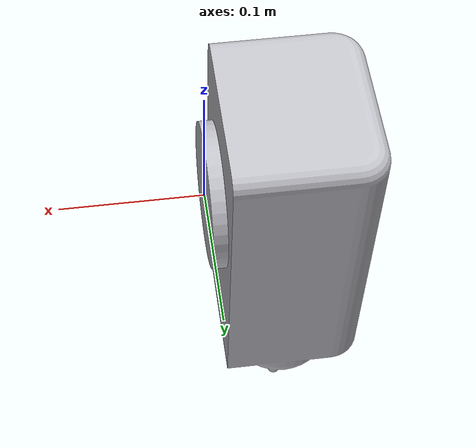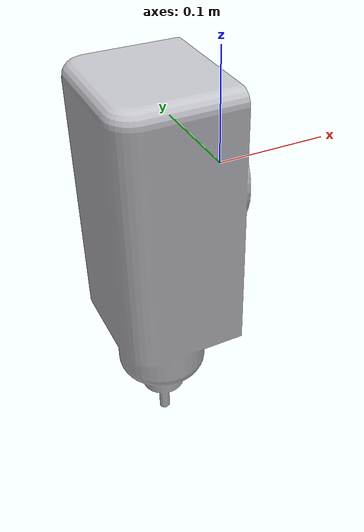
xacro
<?xml version="1.0" ?>
<robot name="Basic" xmlns:xacro="http://www.ros.org/wiki/xacro">

<link name="tool_link_0">
  <inertial>
    <origin xyz="4.750886484983361e-16 0.05871205780670327 -0.04066285802899884" rpy="0 0 1.570796"/>
    <mass value="25.847802304165313"/>
    <inertia ixx="0.178499" iyy="0.186552" izz="0.051426" ixy="-0.0" iyz="0.001879" ixz="0.0"/>
  </inertial>
  <visual>
    <origin xyz="0 0 0" rpy="0 0 1.570796"/>
    <geometry>
      <mesh filename="package://merlin_description/meshes/tools/basic_drill.stl" scale="0.001 0.001 0.001"/>
    </geometry>
    <material name="silver"/>
  </visual>
  <collision>
    <origin xyz="0 0 0" rpy="0 0 1.570796"/>
    <geometry>
      <mesh filename="package://merlin_description/meshes/tools/basic_drill.stl" scale="0.001 0.001 0.001"/>
    </geometry>
  </collision>
</link>
<link name = "tool_link_tip"/>
  <joint name="tool_joint_tip" type="fixed">
  <origin rpy="0 0 0" xyz="-0.06080 0.0 -0.26560" />
  <parent link="tool_link_0" />
  <child link="tool_link_tip" />
</joint>
</robot>
